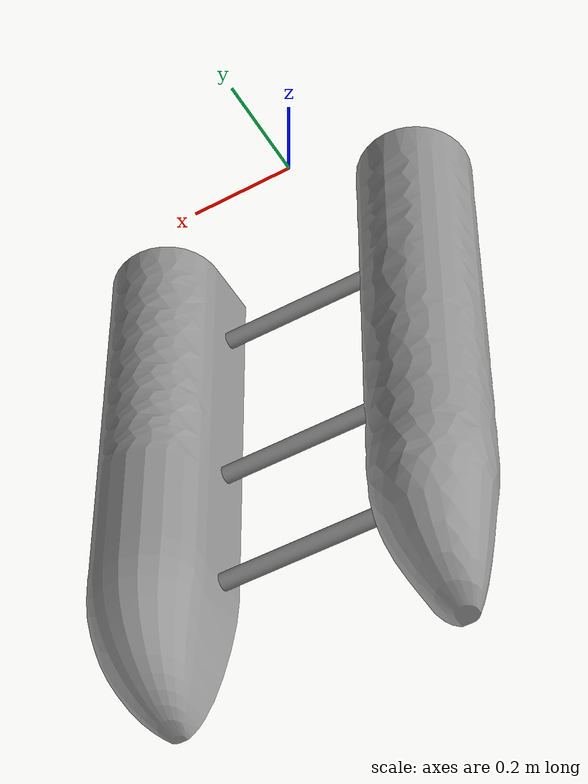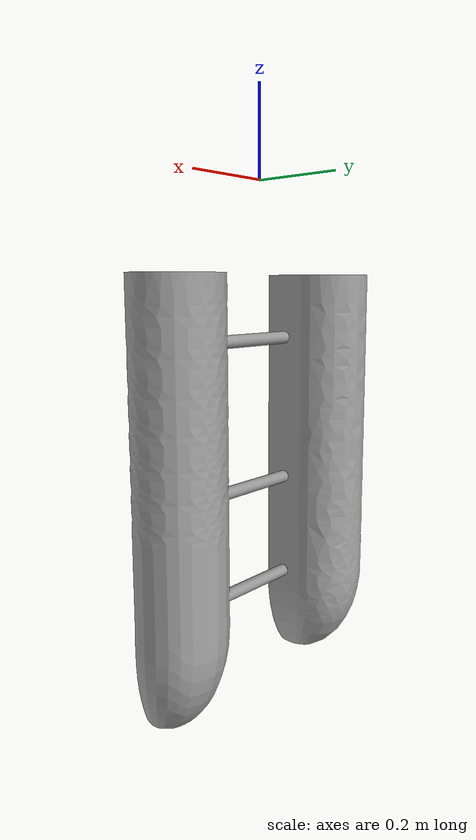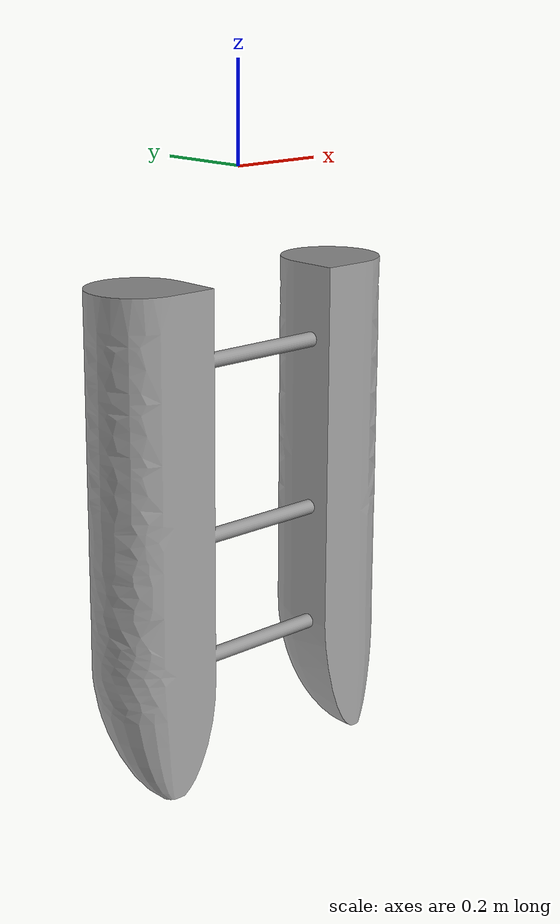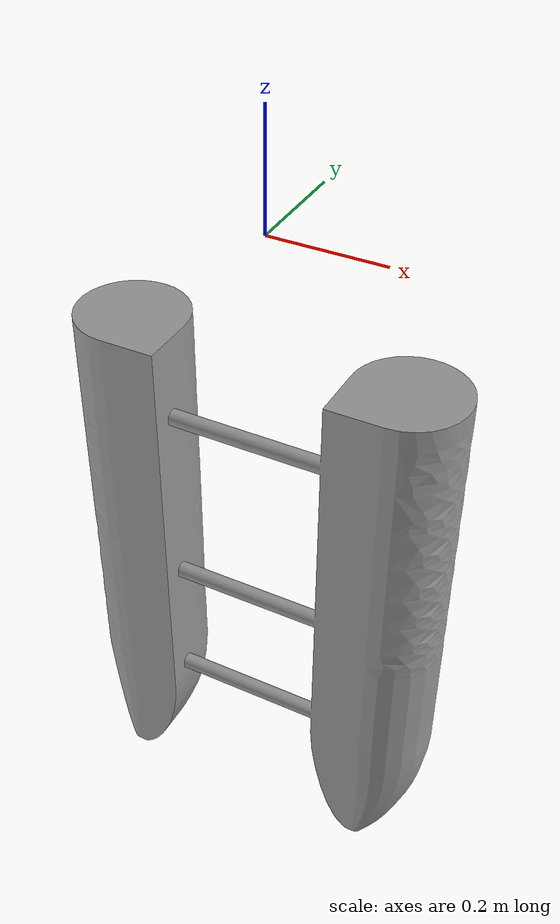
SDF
<?xml version='1.0'?>
<sdf version='1.7'>
  <model name='catamaran'>
    <static>true</static>
    <link name='link'>
      <visual name='visual'>
        <pose>0 0 -0.7 0 0 0</pose>
        <geometry>
          <mesh>
            <uri>/marinero_simulations/models/catamaran/meshes/Catamaran.stl</uri>
            <scale>1.0 1.0 1.0</scale>
          </mesh>
        </geometry>
        <material>
          <script>
            <uri>file://media/materials/scripts/gazebo.material</uri>
            <name>Gazebo/Grey</name>
          </script>
        </material>
      </visual>
      <collision name='collision'>
        <pose>0 0 -0.7 0 0 0</pose>
        <geometry>
          <mesh>
            <uri>/marinero_simulations/models/catamaran/meshes/Catamaran.stl</uri>
            <scale>1.0 1.0 1.0</scale>
          </mesh>
        </geometry>
      </collision>
    </link>
  </model>
</sdf>
